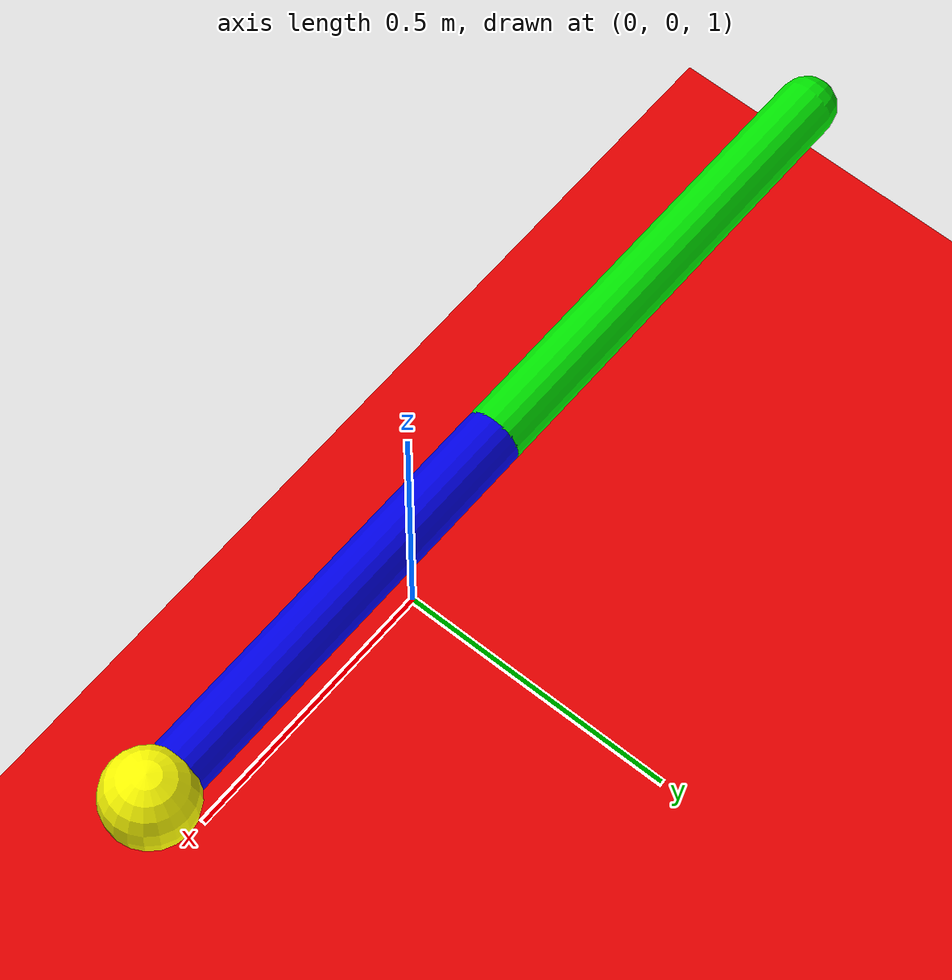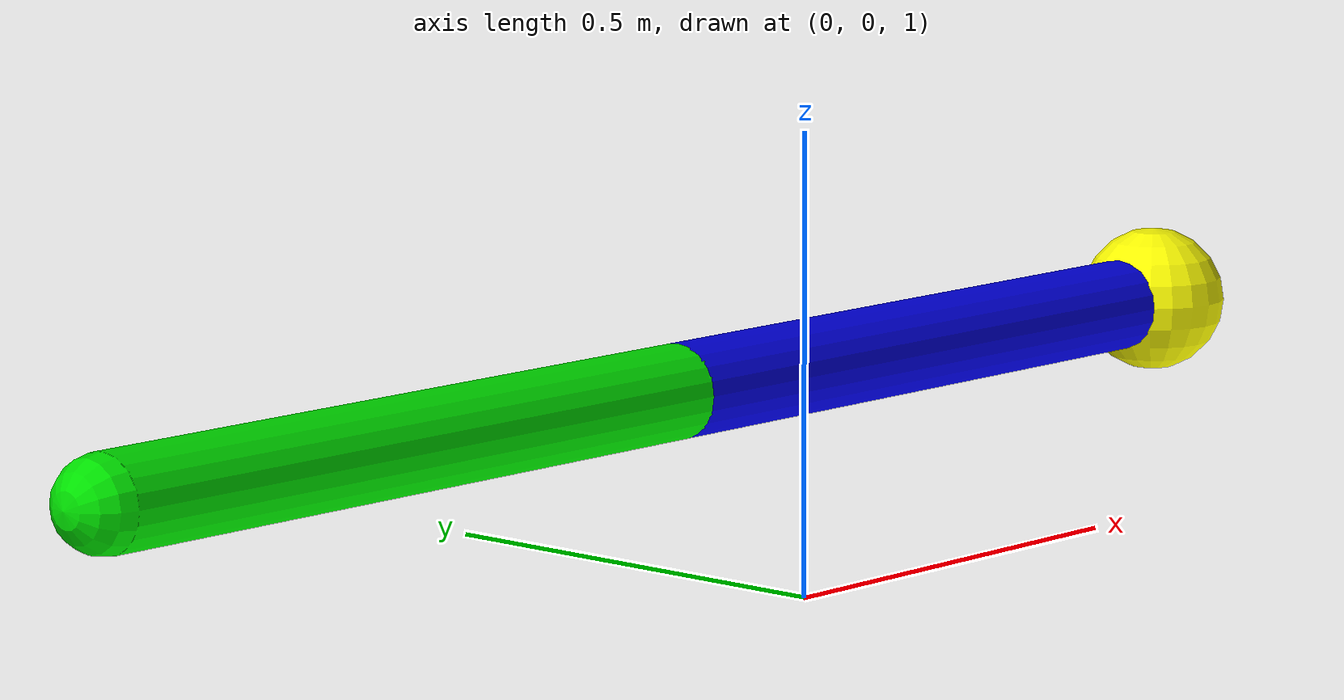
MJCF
<mujoco model="two_link_arm">

  <!-- Physics -->
  <option timestep="0.001" integrator="RK4" gravity="0 0 -9.81"/>

  <worldbody>

    <!-- Light -->
    <light diffuse="0.5 0.5 0.5" pos="0 0 3" dir="0 0 -1"/>

    <!-- Red floor -->
    <geom
      type="plane"
      pos="0 0 0"
      size="5 5 0.1"
      rgba="0.9 0 0 1"/>

    <!-- FIRST LINK (GREEN, FIXED TO WORLD) -->
    <body name="link1" pos="-1.0 0 1.25">

      <!-- Hinge at world -->
      <joint
        name="pin1"
        type="hinge"
        axis="0 1 0"/>

      <!-- Green horizontal cylinder -->
      <geom
        type="capsule"
        fromto="0 0 0   0.8 0 0"
        size="0.05"
        mass="1"
        rgba="0 0.9 0 1"/>

      <!-- SECOND LINK (BLUE) -->
      <body name="link2" pos="0.8 0 0">

        <joint
          name="pin2"
          type="hinge"
          axis="0 1 0"/>

        <!-- Blue horizontal cylinder -->
        <geom
          type="capsule"
          fromto="0 0 0   0.8 0 0"
          size="0.05"
          mass="1"
          rgba="0 0 0.9 1"/>

        <!-- End effector -->
        <site
          name="endeff"
          pos="0.8 0 0"
          size="0.08"
          rgba="1 1 0 1"/>

      </body>

    </body>

  </worldbody>

  <!-- ACTUATORS -->
  <actuator>

    <position name="pservo1" joint="pin1" kp="100"/>
    <velocity name="vservo1" joint="pin1" kv="10"/>

    <position name="pservo2" joint="pin2" kp="100"/>
    <velocity name="vservo2" joint="pin2" kv="10"/>

  </actuator>

  <!-- SENSORS -->
  <sensor>

    <framepos    name="ee_pos" objtype="site" objname="endeff"/>
    <framelinvel name="ee_vel" objtype="site" objname="endeff"/>

  </sensor>

  <!-- Initial angles -->
  <keyframe>
    <key qpos="0.3 -0.4" qvel="0 0"/>
  </keyframe>

</mujoco>
